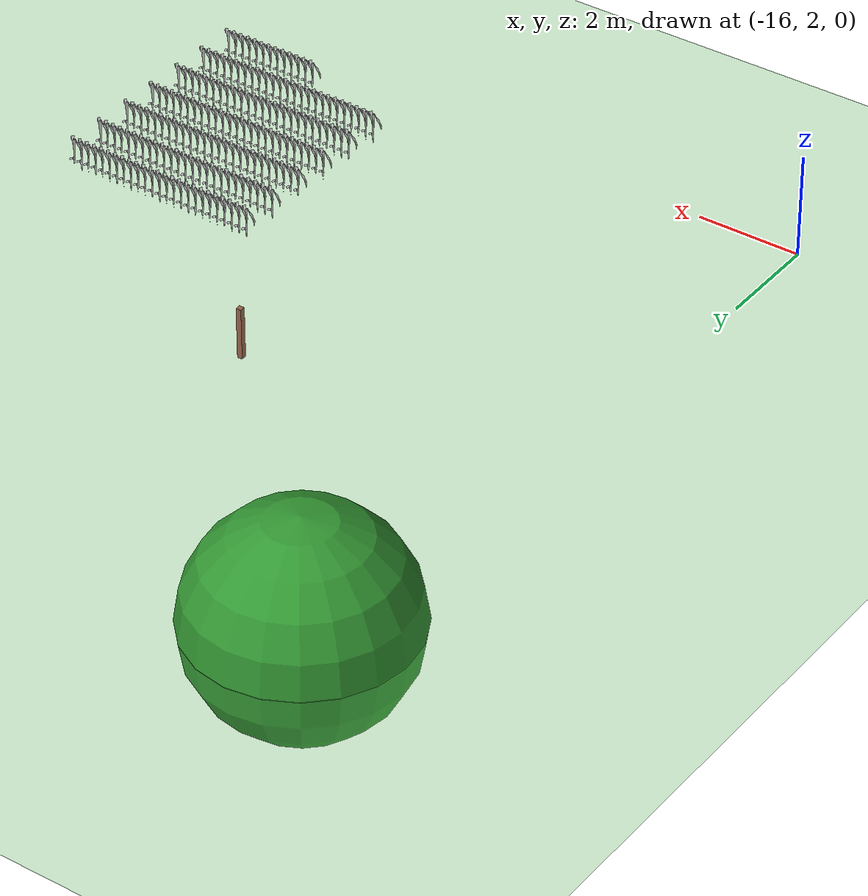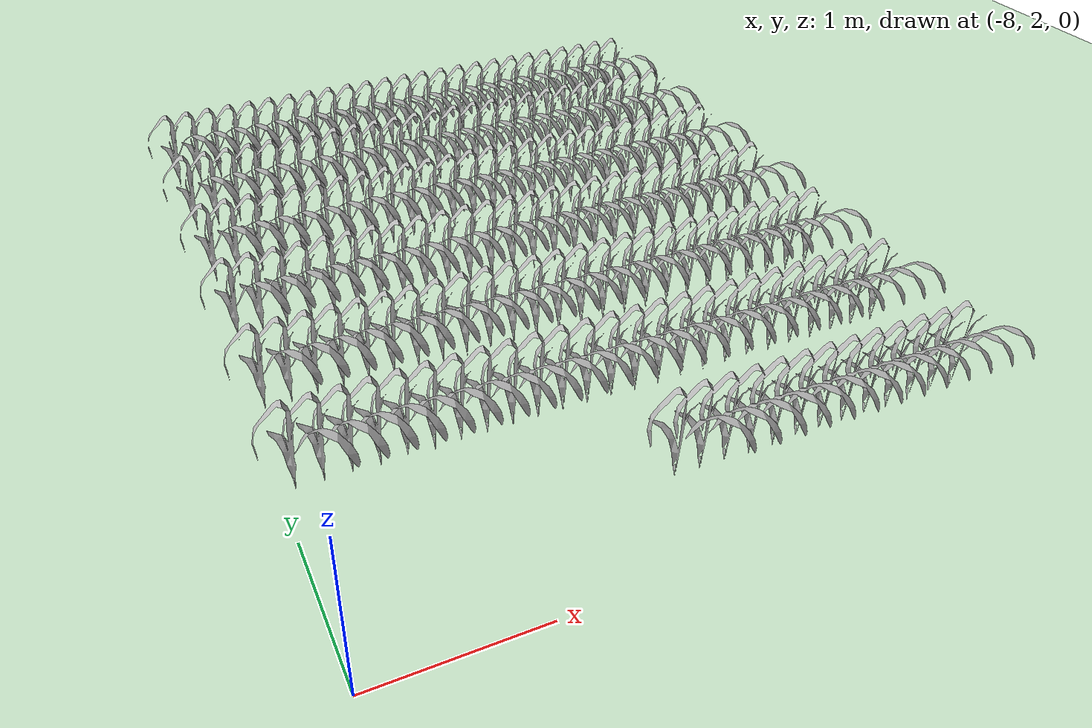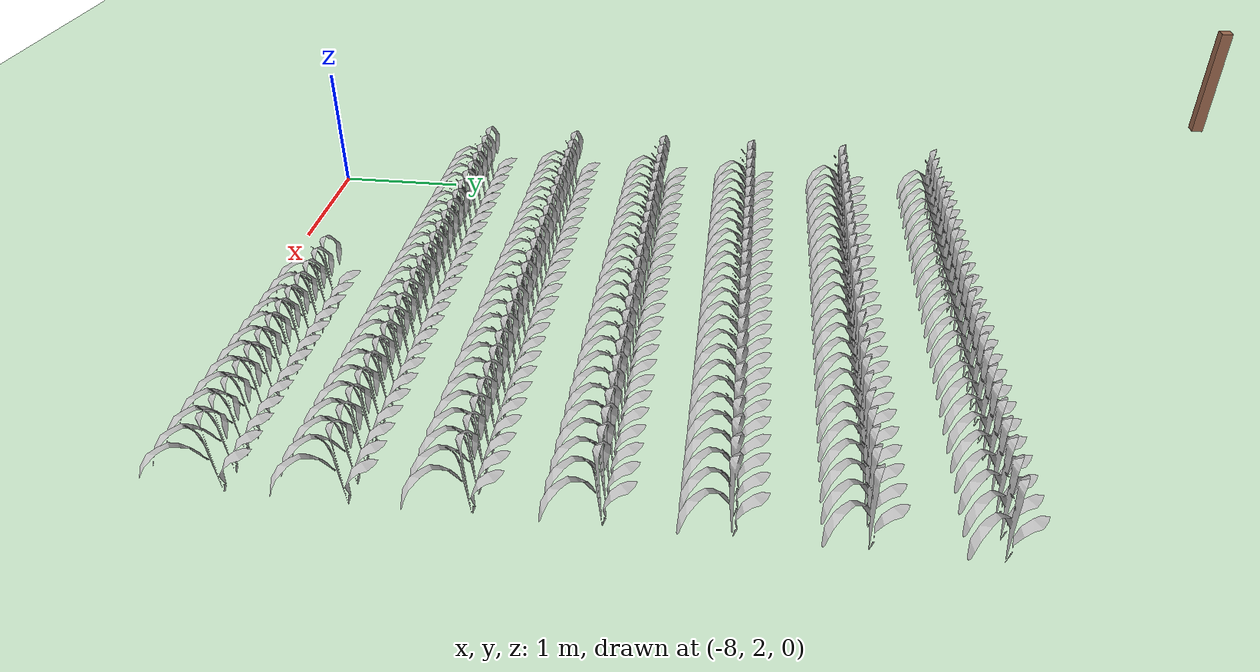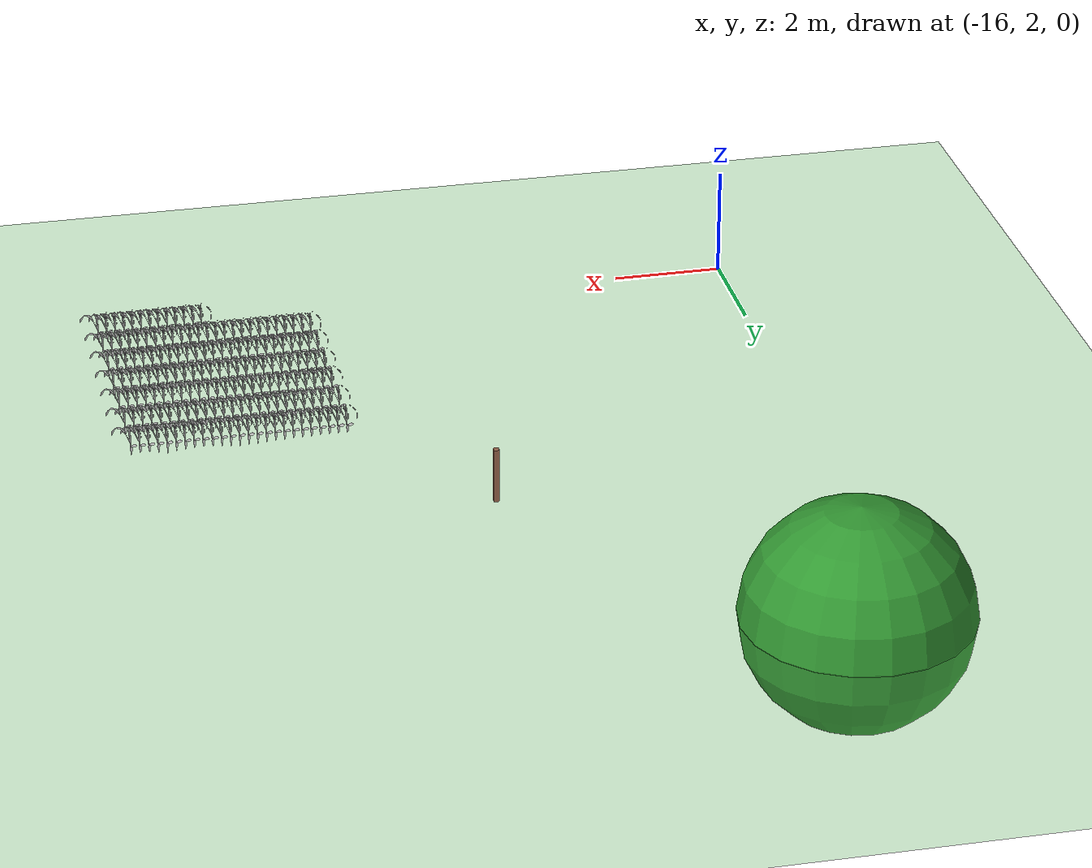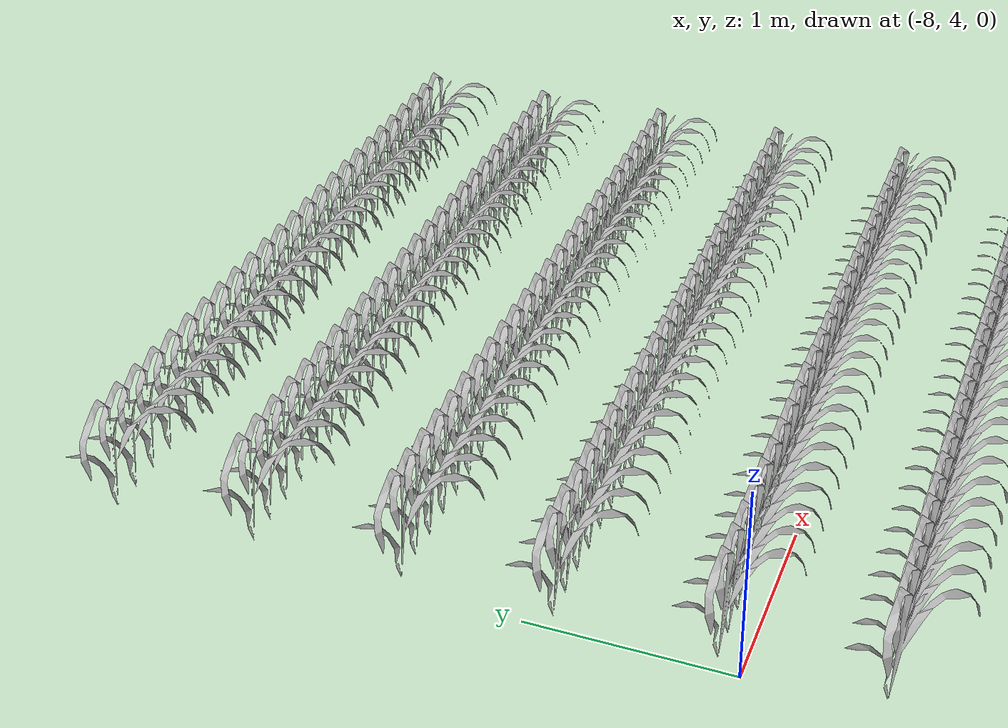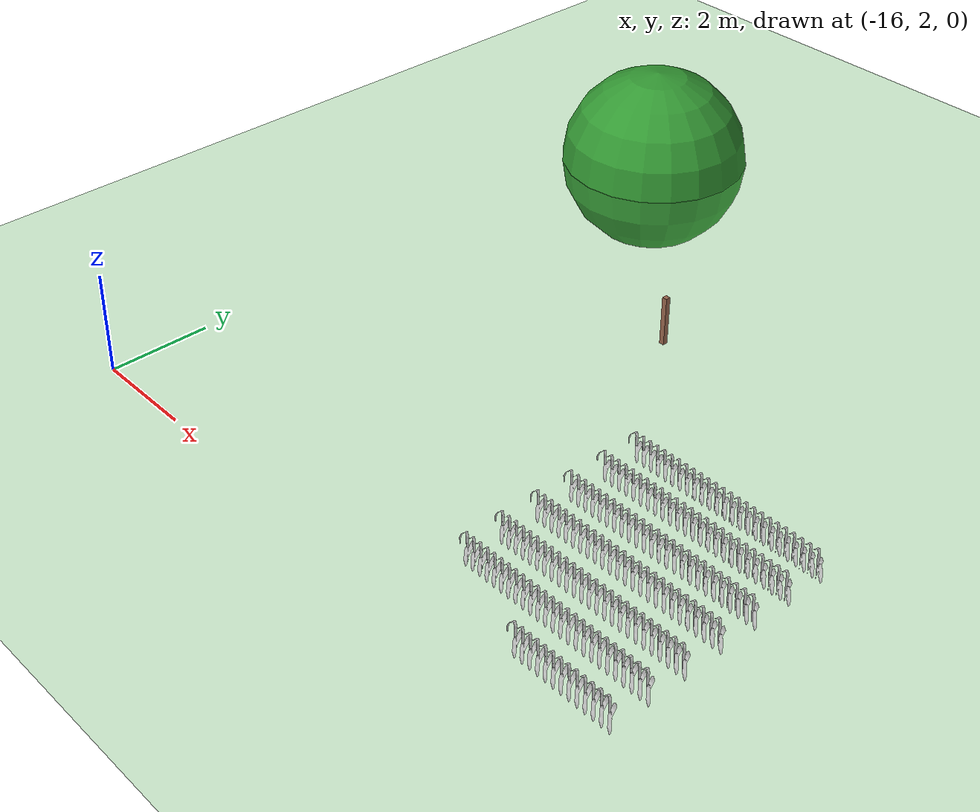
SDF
<sdf version="1.9">
 <world name="farm_world">
  <model name="ground_plane">
   <static>true</static>
   <link name="link">
    <collision name="collision">
     <geometry><plane><normal>0 0 1</normal><size>100 100</size></plane></geometry>
    </collision>
    <visual name="visual">
     <geometry><plane><normal>0 0 1</normal><size>100 100</size></plane></geometry>
     <material>
      <ambient>0.2 0.6 0.2 1</ambient>
      <diffuse>0.3 0.7 0.3 1</diffuse>
      <specular>0.1 0.1 0.1 1</specular>
     </material>
    </visual>
   </link>
  </model>
  <model name="fence_post_2">
   <pose>-10 10 0.5 0 0 0</pose>
   <static>true</static>
   <link name="link">
    <collision name="collision"><geometry><box><size>0.1 0.1 1.0</size></box></geometry></collision>
    <visual name="visual">
     <geometry><box><size>0.1 0.1 1.0</size></box></geometry>
     <material><ambient>0.4 0.3 0.2 1</ambient><diffuse>0.6 0.4 0.3 1</diffuse></material>
    </visual>
   </link>
  </model>
  <include><uri>model://maize_01</uri><name>maize_1312</name><pose>-6.00 2.62 0 0 0 0</pose></include>
  <include><uri>model://maize_01</uri><name>maize_1313</name><pose>-5.84 2.62 0 0 0 0</pose></include>
  <include><uri>model://maize_01</uri><name>maize_1314</name><pose>-5.68 2.62 0 0 0 0</pose></include>
  <include><uri>model://maize_01</uri><name>maize_1315</name><pose>-5.52 2.62 0 0 0 0</pose></include>
  <include><uri>model://maize_01</uri><name>maize_1316</name><pose>-5.36 2.62 0 0 0 0</pose></include>
  <include><uri>model://maize_01</uri><name>maize_1317</name><pose>-5.20 2.62 0 0 0 0</pose></include>
  <include><uri>model://maize_01</uri><name>maize_1318</name><pose>-5.04 2.62 0 0 0 0</pose></include>
  <include><uri>model://maize_01</uri><name>maize_1319</name><pose>-4.88 2.62 0 0 0 0</pose></include>
  <include><uri>model://maize_01</uri><name>maize_1320</name><pose>-4.72 2.62 0 0 0 0</pose></include>
  <include><uri>model://maize_01</uri><name>maize_1321</name><pose>-4.56 2.62 0 0 0 0</pose></include>
  <include><uri>model://maize_01</uri><name>maize_1322</name><pose>-4.40 2.62 0 0 0 0</pose></include>
  <include><uri>model://maize_01</uri><name>maize_1323</name><pose>-4.24 2.62 0 0 0 0</pose></include>
  <include><uri>model://maize_01</uri><name>maize_1324</name><pose>-4.08 2.62 0 0 0 0</pose></include>
  <include><uri>model://maize_01</uri><name>maize_1400</name><pose>-7.92 3.38 0 0 0 0</pose></include>
  <include><uri>model://maize_01</uri><name>maize_1401</name><pose>-7.76 3.38 0 0 0 0</pose></include>
  <include><uri>model://maize_01</uri><name>maize_1402</name><pose>-7.60 3.38 0 0 0 0</pose></include>
  <include><uri>model://maize_01</uri><name>maize_1403</name><pose>-7.44 3.38 0 0 0 0</pose></include>
  <include><uri>model://maize_01</uri><name>maize_1404</name><pose>-7.28 3.38 0 0 0 0</pose></include>
  <include><uri>model://maize_01</uri><name>maize_1405</name><pose>-7.12 3.38 0 0 0 0</pose></include>
  <include><uri>model://maize_01</uri><name>maize_1406</name><pose>-6.96 3.38 0 0 0 0</pose></include>
  <include><uri>model://maize_01</uri><name>maize_1407</name><pose>-6.80 3.38 0 0 0 0</pose></include>
  <include><uri>model://maize_01</uri><name>maize_1408</name><pose>-6.64 3.38 0 0 0 0</pose></include>
  <include><uri>model://maize_01</uri><name>maize_1409</name><pose>-6.48 3.38 0 0 0 0</pose></include>
  <include><uri>model://maize_01</uri><name>maize_1410</name><pose>-6.32 3.38 0 0 0 0</pose></include>
  <include><uri>model://maize_01</uri><name>maize_1411</name><pose>-6.16 3.38 0 0 0 0</pose></include>
  <include><uri>model://maize_01</uri><name>maize_1412</name><pose>-6.00 3.38 0 0 0 0</pose></include>
  <include><uri>model://maize_01</uri><name>maize_1413</name><pose>-5.84 3.38 0 0 0 0</pose></include>
  <include><uri>model://maize_01</uri><name>maize_1414</name><pose>-5.68 3.38 0 0 0 0</pose></include>
  <include><uri>model://maize_01</uri><name>maize_1415</name><pose>-5.52 3.38 0 0 0 0</pose></include>
  <include><uri>model://maize_01</uri><name>maize_1416</name><pose>-5.36 3.38 0 0 0 0</pose></include>
  <include><uri>model://maize_01</uri><name>maize_1417</name><pose>-5.20 3.38 0 0 0 0</pose></include>
  <include><uri>model://maize_01</uri><name>maize_1418</name><pose>-5.04 3.38 0 0 0 0</pose></include>
  <include><uri>model://maize_01</uri><name>maize_1419</name><pose>-4.88 3.38 0 0 0 0</pose></include>
  <include><uri>model://maize_01</uri><name>maize_1420</name><pose>-4.72 3.38 0 0 0 0</pose></include>
  <include><uri>model://maize_01</uri><name>maize_1421</name><pose>-4.56 3.38 0 0 0 0</pose></include>
  <include><uri>model://maize_01</uri><name>maize_1422</name><pose>-4.40 3.38 0 0 0 0</pose></include>
  <include><uri>model://maize_01</uri><name>maize_1423</name><pose>-4.24 3.38 0 0 0 0</pose></include>
  <include><uri>model://maize_01</uri><name>maize_1424</name><pose>-4.08 3.38 0 0 0 0</pose></include>
  <include><uri>model://maize_01</uri><name>maize_1500</name><pose>-7.92 4.12 0 0 0 0</pose></include>
  <include><uri>model://maize_01</uri><name>maize_1501</name><pose>-7.76 4.12 0 0 0 0</pose></include>
  <include><uri>model://maize_01</uri><name>maize_1502</name><pose>-7.60 4.12 0 0 0 0</pose></include>
  <include><uri>model://maize_01</uri><name>maize_1503</name><pose>-7.44 4.12 0 0 0 0</pose></include>
  <include><uri>model://maize_01</uri><name>maize_1504</name><pose>-7.28 4.12 0 0 0 0</pose></include>
  <include><uri>model://maize_01</uri><name>maize_1505</name><pose>-7.12 4.12 0 0 0 0</pose></include>
  <include><uri>model://maize_01</uri><name>maize_1506</name><pose>-6.96 4.12 0 0 0 0</pose></include>
  <include><uri>model://maize_01</uri><name>maize_1507</name><pose>-6.80 4.12 0 0 0 0</pose></include>
  <include><uri>model://maize_01</uri><name>maize_1508</name><pose>-6.64 4.12 0 0 0 0</pose></include>
  <include><uri>model://maize_01</uri><name>maize_1509</name><pose>-6.48 4.12 0 0 0 0</pose></include>
  <include><uri>model://maize_01</uri><name>maize_1510</name><pose>-6.32 4.12 0 0 0 0</pose></include>
  <include><uri>model://maize_01</uri><name>maize_1511</name><pose>-6.16 4.12 0 0 0 0</pose></include>
  <include><uri>model://maize_01</uri><name>maize_1512</name><pose>-6.00 4.12 0 0 0 0</pose></include>
  <include><uri>model://maize_01</uri><name>maize_1513</name><pose>-5.84 4.12 0 0 0 0</pose></include>
  <include><uri>model://maize_01</uri><name>maize_1514</name><pose>-5.68 4.12 0 0 0 0</pose></include>
  <include><uri>model://maize_01</uri><name>maize_1515</name><pose>-5.52 4.12 0 0 0 0</pose></include>
  <include><uri>model://maize_01</uri><name>maize_1516</name><pose>-5.36 4.12 0 0 0 0</pose></include>
  <include><uri>model://maize_01</uri><name>maize_1517</name><pose>-5.20 4.12 0 0 0 0</pose></include>
  <include><uri>model://maize_01</uri><name>maize_1518</name><pose>-5.04 4.12 0 0 0 0</pose></include>
  <include><uri>model://maize_01</uri><name>maize_1519</name><pose>-4.88 4.12 0 0 0 0</pose></include>
  <include><uri>model://maize_01</uri><name>maize_1520</name><pose>-4.72 4.12 0 0 0 0</pose></include>
  <include><uri>model://maize_01</uri><name>maize_1521</name><pose>-4.56 4.12 0 0 0 0</pose></include>
  <include><uri>model://maize_01</uri><name>maize_1522</name><pose>-4.40 4.12 0 0 0 0</pose></include>
  <include><uri>model://maize_01</uri><name>maize_1523</name><pose>-4.24 4.12 0 0 0 0</pose></include>
  <include><uri>model://maize_01</uri><name>maize_1524</name><pose>-4.08 4.12 0 0 0 0</pose></include>
  <include><uri>model://maize_01</uri><name>maize_1600</name><pose>-7.92 4.88 0 0 0 0</pose></include>
  <include><uri>model://maize_01</uri><name>maize_1601</name><pose>-7.76 4.88 0 0 0 0</pose></include>
  <include><uri>model://maize_01</uri><name>maize_1602</name><pose>-7.60 4.88 0 0 0 0</pose></include>
  <include><uri>model://maize_01</uri><name>maize_1603</name><pose>-7.44 4.88 0 0 0 0</pose></include>
  <include><uri>model://maize_01</uri><name>maize_1604</name><pose>-7.28 4.88 0 0 0 0</pose></include>
  <include><uri>model://maize_01</uri><name>maize_1605</name><pose>-7.12 4.88 0 0 0 0</pose></include>
  <include><uri>model://maize_01</uri><name>maize_1606</name><pose>-6.96 4.88 0 0 0 0</pose></include>
  <include><uri>model://maize_01</uri><name>maize_1607</name><pose>-6.80 4.88 0 0 0 0</pose></include>
  <include><uri>model://maize_01</uri><name>maize_1608</name><pose>-6.64 4.88 0 0 0 0</pose></include>
  <include><uri>model://maize_01</uri><name>maize_1609</name><pose>-6.48 4.88 0 0 0 0</pose></include>
  <include><uri>model://maize_01</uri><name>maize_1610</name><pose>-6.32 4.88 0 0 0 0</pose></include>
  <include><uri>model://maize_01</uri><name>maize_1611</name><pose>-6.16 4.88 0 0 0 0</pose></include>
  <include><uri>model://maize_01</uri><name>maize_1612</name><pose>-6.00 4.88 0 0 0 0</pose></include>
  <include><uri>model://maize_01</uri><name>maize_1613</name><pose>-5.84 4.88 0 0 0 0</pose></include>
  <include><uri>model://maize_01</uri><name>maize_1614</name><pose>-5.68 4.88 0 0 0 0</pose></include>
  <include><uri>model://maize_01</uri><name>maize_1615</name><pose>-5.52 4.88 0 0 0 0</pose></include>
  <include><uri>model://maize_01</uri><name>maize_1616</name><pose>-5.36 4.88 0 0 0 0</pose></include>
  <include><uri>model://maize_01</uri><name>maize_1617</name><pose>-5.20 4.88 0 0 0 0</pose></include>
  <include><uri>model://maize_01</uri><name>maize_1618</name><pose>-5.04 4.88 0 0 0 0</pose></include>
  <include><uri>model://maize_01</uri><name>maize_1619</name><pose>-4.88 4.88 0 0 0 0</pose></include>
  <include><uri>model://maize_01</uri><name>maize_1620</name><pose>-4.72 4.88 0 0 0 0</pose></include>
  <include><uri>model://maize_01</uri><name>maize_1621</name><pose>-4.56 4.88 0 0 0 0</pose></include>
  <include><uri>model://maize_01</uri><name>maize_1622</name><pose>-4.40 4.88 0 0 0 0</pose></include>
  <include><uri>model://maize_01</uri><name>maize_1623</name><pose>-4.24 4.88 0 0 0 0</pose></include>
  <include><uri>model://maize_01</uri><name>maize_1624</name><pose>-4.08 4.88 0 0 0 0</pose></include>
  <include><uri>model://maize_01</uri><name>maize_1700</name><pose>-7.92 5.62 0 0 0 0</pose></include>
  <include><uri>model://maize_01</uri><name>maize_1701</name><pose>-7.76 5.62 0 0 0 0</pose></include>
  <include><uri>model://maize_01</uri><name>maize_1702</name><pose>-7.60 5.62 0 0 0 0</pose></include>
  <include><uri>model://maize_01</uri><name>maize_1703</name><pose>-7.44 5.62 0 0 0 0</pose></include>
  <include><uri>model://maize_01</uri><name>maize_1704</name><pose>-7.28 5.62 0 0 0 0</pose></include>
  <include><uri>model://maize_01</uri><name>maize_1705</name><pose>-7.12 5.62 0 0 0 0</pose></include>
  <include><uri>model://maize_01</uri><name>maize_1706</name><pose>-6.96 5.62 0 0 0 0</pose></include>
  <include><uri>model://maize_01</uri><name>maize_1707</name><pose>-6.80 5.62 0 0 0 0</pose></include>
  <include><uri>model://maize_01</uri><name>maize_1708</name><pose>-6.64 5.62 0 0 0 0</pose></include>
  <include><uri>model://maize_01</uri><name>maize_1709</name><pose>-6.48 5.62 0 0 0 0</pose></include>
  <include><uri>model://maize_01</uri><name>maize_1710</name><pose>-6.32 5.62 0 0 0 0</pose></include>
  <include><uri>model://maize_01</uri><name>maize_1711</name><pose>-6.16 5.62 0 0 0 0</pose></include>
  <include><uri>model://maize_01</uri><name>maize_1712</name><pose>-6.00 5.62 0 0 0 0</pose></include>
  <include><uri>model://maize_01</uri><name>maize_1713</name><pose>-5.84 5.62 0 0 0 0</pose></include>
  <include><uri>model://maize_01</uri><name>maize_1714</name><pose>-5.68 5.62 0 0 0 0</pose></include>
  <include><uri>model://maize_01</uri><name>maize_1715</name><pose>-5.52 5.62 0 0 0 0</pose></include>
  <include><uri>model://maize_01</uri><name>maize_1716</name><pose>-5.36 5.62 0 0 0 0</pose></include>
  <include><uri>model://maize_01</uri><name>maize_1717</name><pose>-5.20 5.62 0 0 0 0</pose></include>
  <include><uri>model://maize_01</uri><name>maize_1718</name><pose>-5.04 5.62 0 0 0 0</pose></include>
  <include><uri>model://maize_01</uri><name>maize_1719</name><pose>-4.88 5.62 0 0 0 0</pose></include>
  <include><uri>model://maize_01</uri><name>maize_1720</name><pose>-4.72 5.62 0 0 0 0</pose></include>
  <include><uri>model://maize_01</uri><name>maize_1721</name><pose>-4.56 5.62 0 0 0 0</pose></include>
  <include><uri>model://maize_01</uri><name>maize_1722</name><pose>-4.40 5.62 0 0 0 0</pose></include>
  <include><uri>model://maize_01</uri><name>maize_1723</name><pose>-4.24 5.62 0 0 0 0</pose></include>
  <include><uri>model://maize_01</uri><name>maize_1724</name><pose>-4.08 5.62 0 0 0 0</pose></include>
  <include><uri>model://maize_01</uri><name>maize_1800</name><pose>-7.92 6.38 0 0 0 0</pose></include>
  <include><uri>model://maize_01</uri><name>maize_1801</name><pose>-7.76 6.38 0 0 0 0</pose></include>
  <include><uri>model://maize_01</uri><name>maize_1802</name><pose>-7.60 6.38 0 0 0 0</pose></include>
  <include><uri>model://maize_01</uri><name>maize_1803</name><pose>-7.44 6.38 0 0 0 0</pose></include>
  <include><uri>model://maize_01</uri><name>maize_1804</name><pose>-7.28 6.38 0 0 0 0</pose></include>
  <include><uri>model://maize_01</uri><name>maize_1805</name><pose>-7.12 6.38 0 0 0 0</pose></include>
  <include><uri>model://maize_01</uri><name>maize_1806</name><pose>-6.96 6.38 0 0 0 0</pose></include>
  <include><uri>model://maize_01</uri><name>maize_1807</name><pose>-6.80 6.38 0 0 0 0</pose></include>
  <include><uri>model://maize_01</uri><name>maize_1808</name><pose>-6.64 6.38 0 0 0 0</pose></include>
  <include><uri>model://maize_01</uri><name>maize_1809</name><pose>-6.48 6.38 0 0 0 0</pose></include>
  <include><uri>model://maize_01</uri><name>maize_1810</name><pose>-6.32 6.38 0 0 0 0</pose></include>
  <include><uri>model://maize_01</uri><name>maize_1811</name><pose>-6.16 6.38 0 0 0 0</pose></include>
  <include><uri>model://maize_01</uri><name>maize_1812</name><pose>-6.00 6.38 0 0 0 0</pose></include>
  <include><uri>model://maize_01</uri><name>maize_1813</name><pose>-5.84 6.38 0 0 0 0</pose></include>
  <include><uri>model://maize_01</uri><name>maize_1814</name><pose>-5.68 6.38 0 0 0 0</pose></include>
  <include><uri>model://maize_01</uri><name>maize_1815</name><pose>-5.52 6.38 0 0 0 0</pose></include>
  <include><uri>model://maize_01</uri><name>maize_1816</name><pose>-5.36 6.38 0 0 0 0</pose></include>
  <include><uri>model://maize_01</uri><name>maize_1817</name><pose>-5.20 6.38 0 0 0 0</pose></include>
  <include><uri>model://maize_01</uri><name>maize_1818</name><pose>-5.04 6.38 0 0 0 0</pose></include>
  <include><uri>model://maize_01</uri><name>maize_1819</name><pose>-4.88 6.38 0 0 0 0</pose></include>
  <include><uri>model://maize_01</uri><name>maize_1820</name><pose>-4.72 6.38 0 0 0 0</pose></include>
  <include><uri>model://maize_01</uri><name>maize_1821</name><pose>-4.56 6.38 0 0 0 0</pose></include>
  <include><uri>model://maize_01</uri><name>maize_1822</name><pose>-4.40 6.38 0 0 0 0</pose></include>
  <include><uri>model://maize_01</uri><name>maize_1823</name><pose>-4.24 6.38 0 0 0 0</pose></include>
  <include><uri>model://maize_01</uri><name>maize_1824</name><pose>-4.08 6.38 0 0 0 0</pose></include>
  <include><uri>model://maize_01</uri><name>maize_1900</name><pose>-7.92 7.12 0 0 0 0</pose></include>
  <include><uri>model://maize_01</uri><name>maize_1901</name><pose>-7.76 7.12 0 0 0 0</pose></include>
  <include><uri>model://maize_01</uri><name>maize_1902</name><pose>-7.60 7.12 0 0 0 0</pose></include>
  <include><uri>model://maize_01</uri><name>maize_1903</name><pose>-7.44 7.12 0 0 0 0</pose></include>
  <include><uri>model://maize_01</uri><name>maize_1904</name><pose>-7.28 7.12 0 0 0 0</pose></include>
  <include><uri>model://maize_01</uri><name>maize_1905</name><pose>-7.12 7.12 0 0 0 0</pose></include>
  <include><uri>model://maize_01</uri><name>maize_1906</name><pose>-6.96 7.12 0 0 0 0</pose></include>
  <include><uri>model://maize_01</uri><name>maize_1907</name><pose>-6.80 7.12 0 0 0 0</pose></include>
  <include><uri>model://maize_01</uri><name>maize_1908</name><pose>-6.64 7.12 0 0 0 0</pose></include>
  <include><uri>model://maize_01</uri><name>maize_1909</name><pose>-6.48 7.12 0 0 0 0</pose></include>
  <include><uri>model://maize_01</uri><name>maize_1910</name><pose>-6.32 7.12 0 0 0 0</pose></include>
  <include><uri>model://maize_01</uri><name>maize_1911</name><pose>-6.16 7.12 0 0 0 0</pose></include>
  <include><uri>model://maize_01</uri><name>maize_1912</name><pose>-6.00 7.12 0 0 0 0</pose></include>
  <include><uri>model://maize_01</uri><name>maize_1913</name><pose>-5.84 7.12 0 0 0 0</pose></include>
  <include><uri>model://maize_01</uri><name>maize_1914</name><pose>-5.68 7.12 0 0 0 0</pose></include>
  <include><uri>model://maize_01</uri><name>maize_1915</name><pose>-5.52 7.12 0 0 0 0</pose></include>
  <include><uri>model://maize_01</uri><name>maize_1916</name><pose>-5.36 7.12 0 0 0 0</pose></include>
  <include><uri>model://maize_01</uri><name>maize_1917</name><pose>-5.20 7.12 0 0 0 0</pose></include>
  <include><uri>model://maize_01</uri><name>maize_1918</name><pose>-5.04 7.12 0 0 0 0</pose></include>
  <include><uri>model://maize_01</uri><name>maize_1919</name><pose>-4.88 7.12 0 0 0 0</pose></include>
  <include><uri>model://maize_01</uri><name>maize_1920</name><pose>-4.72 7.12 0 0 0 0</pose></include>
  <include><uri>model://maize_01</uri><name>maize_1921</name><pose>-4.56 7.12 0 0 0 0</pose></include>
  <include><uri>model://maize_01</uri><name>maize_1922</name><pose>-4.40 7.12 0 0 0 0</pose></include>
  <include><uri>model://maize_01</uri><name>maize_1923</name><pose>-4.24 7.12 0 0 0 0</pose></include>
  <include><uri>model://maize_01</uri><name>maize_1924</name><pose>-4.08 7.12 0 0 0 0</pose></include>
  <include><uri>model://big_tree</uri><name>tree_2</name><pose>-15 15 0 0 0 0</pose></include>
 </world>
</sdf>
